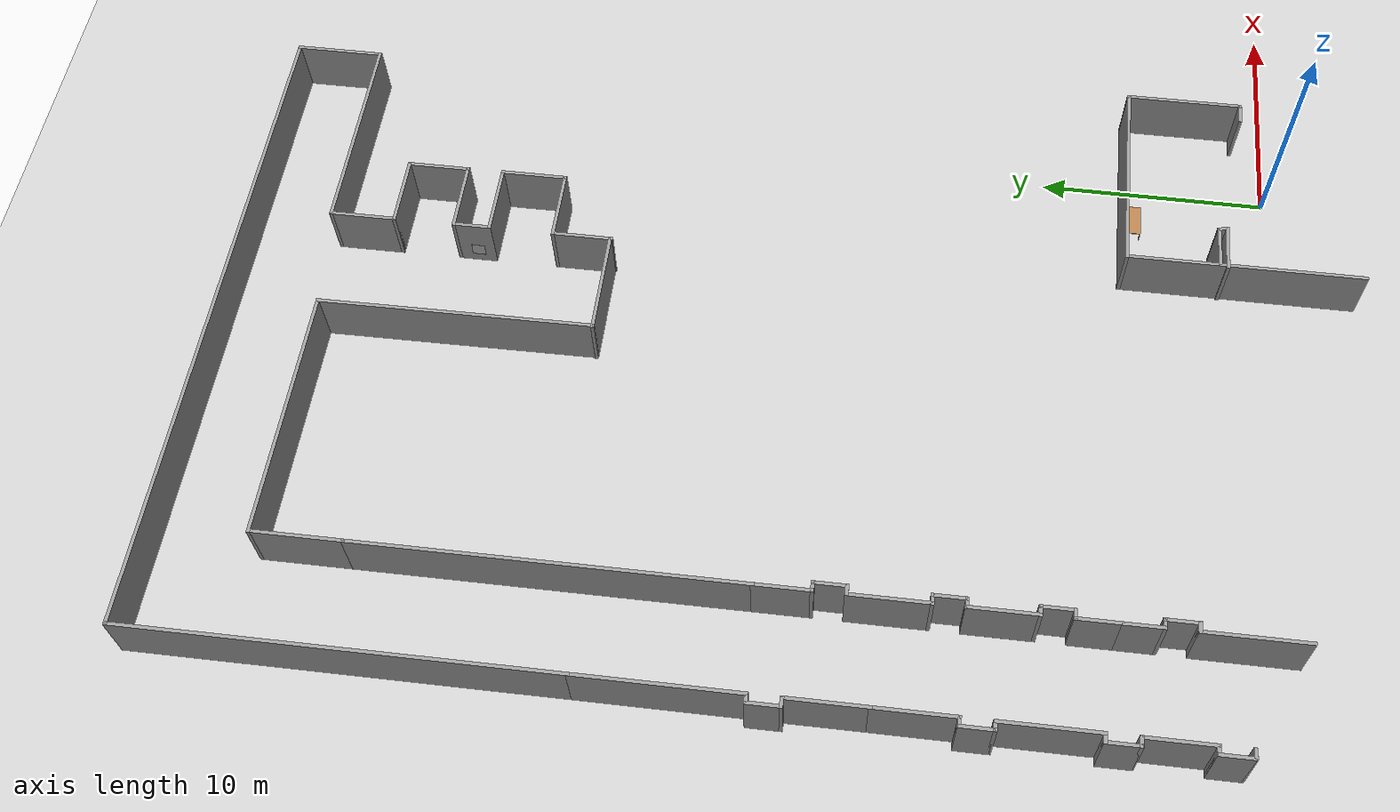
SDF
<sdf version="1.6">
 <world name="default">
  <model name="ground_plane">
   <static>1</static>
   <link name="link">
    <collision name="collision">
     <geometry><plane><normal>0 0 1</normal><size>1 1</size></plane></geometry>
     <surface><friction><ode><mu>100</mu><mu2>50</mu2></ode></friction></surface>
    </collision>
    <visual name="visual">
     <cast_shadows>0</cast_shadows>
     <geometry><plane><normal>0 0 1</normal><size>1 1</size></plane></geometry>
     <material>
      <script><uri>file://media/materials/scripts/gazebo.material</uri><name>Gazebo/Grey</name></script>
     </material>
    </visual>
   </link>
  </model>
  <model name="dstar_khu_5th_floor2">
   <pose>-12.2572 17.3934 0 0 -0 0</pose>
   <link name="Wall_108">
    <collision name="Wall_108_Collision">
     <geometry><box><size>4.5 0.15 2.5</size></box></geometry>
     <pose>0 0 1.25 0 -0 0</pose>
    </collision>
    <visual name="Wall_108_Visual">
     <pose>0 0 1.25 0 -0 0</pose>
     <geometry><box><size>4.5 0.15 2.5</size></box></geometry>
     <material>
      <script><uri>file://media/materials/scripts/gazebo.material</uri><name>Gazebo/Grey</name></script>
      <ambient>1 1 1 1</ambient>
     </material>
     <meta><layer>0</layer></meta>
    </visual>
    <pose>-10.4535 -16.0669 0 0 -0 1.5708</pose>
   </link>
   <link name="Wall_109">
    <collision name="Wall_109_Collision">
     <geometry><box><size>0.5 0.15 2.5</size></box></geometry>
     <pose>0 0 1.25 0 -0 0</pose>
    </collision>
    <visual name="Wall_109_Visual">
     <pose>0 0 1.25 0 -0 0</pose>
     <geometry><box><size>0.5 0.15 2.5</size></box></geometry>
     <material>
      <script><uri>file://media/materials/scripts/gazebo.material</uri><name>Gazebo/Grey</name></script>
      <ambient>1 1 1 1</ambient>
     </material>
     <meta><layer>0</layer></meta>
    </visual>
    <pose>-10.2785 -13.8919 0 0 -0 0</pose>
   </link>
   <link name="Wall_110">
    <collision name="Wall_110_Collision">
     <geometry><box><size>1.5 0.15 2.5</size></box></geometry>
     <pose>0 0 1.25 0 -0 0</pose>
    </collision>
    <visual name="Wall_110_Visual">
     <pose>0 0 1.25 0 -0 0</pose>
     <geometry><box><size>1.5 0.15 2.5</size></box></geometry>
     <material>
      <script><uri>file://media/materials/scripts/gazebo.material</uri><name>Gazebo/Grey</name></script>
      <ambient>1 1 1 1</ambient>
     </material>
     <meta><layer>0</layer></meta>
    </visual>
    <pose>-10.1035 -13.2169 0 0 -0 1.5708</pose>
   </link>
   <link name="Wall_111">
    <collision name="Wall_111_Collision">
     <geometry><box><size>0.5 0.15 2.5</size></box></geometry>
     <pose>0 0 1.25 0 -0 0</pose>
    </collision>
    <visual name="Wall_111_Visual">
     <pose>0 0 1.25 0 -0 0</pose>
     <geometry><box><size>0.5 0.15 2.5</size></box></geometry>
     <material>
      <script><uri>file://media/materials/scripts/gazebo.material</uri><name>Gazebo/Grey</name></script>
      <ambient>1 1 1 1</ambient>
     </material>
     <meta><layer>0</layer></meta>
    </visual>
    <pose>-10.2785 -12.5419 0 0 -0 3.14159</pose>
   </link>
   <link name="Wall_112">
    <collision name="Wall_112_Collision">
     <geometry><box><size>1.75 0.15 2.5</size></box></geometry>
     <pose>0 0 1.25 0 -0 0</pose>
    </collision>
    <visual name="Wall_112_Visual">
     <pose>0 0 1.25 0 -0 0</pose>
     <geometry><box><size>1.75 0.15 2.5</size></box></geometry>
     <material>
      <script><uri>file://media/materials/scripts/gazebo.material</uri><name>Gazebo/Grey</name></script>
      <ambient>1 1 1 1</ambient>
     </material>
     <meta><layer>0</layer></meta>
    </visual>
    <pose>-10.4535 -11.7419 0 0 -0 1.5708</pose>
   </link>
   <link name="Wall_114">
    <collision name="Wall_114_Collision">
     <geometry><box><size>2 0.15 2.5</size></box></geometry>
     <pose>0 0 1.25 0 -0 0</pose>
    </collision>
    <visual name="Wall_114_Visual">
     <pose>0 0 1.25 0 -0 0</pose>
     <geometry><box><size>2 0.15 2.5</size></box></geometry>
     <material>
      <script><uri>file://media/materials/scripts/gazebo.material</uri><name>Gazebo/Grey</name></script>
      <ambient>1 1 1 1</ambient>
     </material>
     <meta><layer>0</layer></meta>
    </visual>
    <pose>-10.4535 -10.0169 0 0 -0 1.5708</pose>
   </link>
   <link name="Wall_115">
    <collision name="Wall_115_Collision">
     <geometry><box><size>0.5 0.15 2.5</size></box></geometry>
     <pose>0 0 1.25 0 -0 0</pose>
    </collision>
    <visual name="Wall_115_Visual">
     <pose>0 0 1.25 0 -0 0</pose>
     <geometry><box><size>0.5 0.15 2.5</size></box></geometry>
     <material>
      <script><uri>file://media/materials/scripts/gazebo.material</uri><name>Gazebo/Grey</name></script>
      <ambient>1 1 1 1</ambient>
     </material>
     <meta><layer>0</layer></meta>
    </visual>
    <pose>-10.2785 -9.09191 0 0 -0 0</pose>
   </link>
   <link name="Wall_116">
    <collision name="Wall_116_Collision">
     <geometry><box><size>1.5 0.15 2.5</size></box></geometry>
     <pose>0 0 1.25 0 -0 0</pose>
    </collision>
    <visual name="Wall_116_Visual">
     <pose>0 0 1.25 0 -0 0</pose>
     <geometry><box><size>1.5 0.15 2.5</size></box></geometry>
     <material>
      <script><uri>file://media/materials/scripts/gazebo.material</uri><name>Gazebo/Grey</name></script>
      <ambient>1 1 1 1</ambient>
     </material>
     <meta><layer>0</layer></meta>
    </visual>
    <pose>-10.1035 -8.41691 0 0 -0 1.5708</pose>
   </link>
   <link name="Wall_117">
    <collision name="Wall_117_Collision">
     <geometry><box><size>0.5 0.15 2.5</size></box></geometry>
     <pose>0 0 1.25 0 -0 0</pose>
    </collision>
    <visual name="Wall_117_Visual">
     <pose>0 0 1.25 0 -0 0</pose>
     <geometry><box><size>0.5 0.15 2.5</size></box></geometry>
     <material>
      <script><uri>file://media/materials/scripts/gazebo.material</uri><name>Gazebo/Grey</name></script>
      <ambient>1 1 1 1</ambient>
     </material>
     <meta><layer>0</layer></meta>
    </visual>
    <pose>-10.2785 -7.74191 0 0 -0 3.14159</pose>
   </link>
   <link name="Wall_118">
    <collision name="Wall_118_Collision">
     <geometry><box><size>3 0.15 2.5</size></box></geometry>
     <pose>0 0 1.25 0 -0 0</pose>
    </collision>
    <visual name="Wall_118_Visual">
     <pose>0 0 1.25 0 -0 0</pose>
     <geometry><box><size>3 0.15 2.5</size></box></geometry>
     <material>
      <script><uri>file://media/materials/scripts/gazebo.material</uri><name>Gazebo/Grey</name></script>
      <ambient>1 1 1 1</ambient>
     </material>
     <meta><layer>0</layer></meta>
    </visual>
    <pose>-10.4535 -6.31691 0 0 -0 1.5708</pose>
   </link>
   <link name="Wall_12">
    <collision name="Wall_12_Collision">
     <geometry><box><size>1 0.15 2.5</size></box></geometry>
     <pose>0 0 1.25 0 -0 0</pose>
    </collision>
    <visual name="Wall_12_Visual">
     <pose>0 0 1.25 0 -0 0</pose>
     <geometry><box><size>1 0.15 2.5</size></box></geometry>
     <material>
      <script><uri>file://media/materials/scripts/gazebo.material</uri><name>Gazebo/Grey</name></script>
      <ambient>1 1 1 1</ambient>
     </material>
     <meta><layer>0</layer></meta>
    </visual>
    <pose>15.6651 -15.9996 0 0 -0 0</pose>
   </link>
   <link name="Wall_121">
    <collision name="Wall_121_Collision">
     <geometry><box><size>0.5 0.15 2.5</size></box></geometry>
     <pose>0 0 1.25 0 -0 0</pose>
    </collision>
    <visual name="Wall_121_Visual">
     <pose>0 0 1.25 0 -0 0</pose>
     <geometry><box><size>0.5 0.15 2.5</size></box></geometry>
     <material>
      <script><uri>file://media/materials/scripts/gazebo.material</uri><name>Gazebo/Grey</name></script>
      <ambient>1 1 1 1</ambient>
     </material>
     <meta><layer>0</layer></meta>
    </visual>
    <pose>-10.2785 -4.89191 0 0 -0 0</pose>
   </link>
   <link name="Wall_122">
    <collision name="Wall_122_Collision">
     <geometry><box><size>1.5 0.15 2.5</size></box></geometry>
     <pose>0 0 1.25 0 -0 0</pose>
    </collision>
    <visual name="Wall_122_Visual">
     <pose>0 0 1.25 0 -0 0</pose>
     <geometry><box><size>1.5 0.15 2.5</size></box></geometry>
     <material>
      <script><uri>file://media/materials/scripts/gazebo.material</uri><name>Gazebo/Grey</name></script>
      <ambient>1 1 1 1</ambient>
     </material>
     <meta><layer>0</layer></meta>
    </visual>
    <pose>-10.1035 -4.21691 0 0 -0 1.5708</pose>
   </link>
   <link name="Wall_123">
    <collision name="Wall_123_Collision">
     <geometry><box><size>0.5 0.15 2.5</size></box></geometry>
     <pose>0 0 1.25 0 -0 0</pose>
    </collision>
    <visual name="Wall_123_Visual">
     <pose>0 0 1.25 0 -0 0</pose>
     <geometry><box><size>0.5 0.15 2.5</size></box></geometry>
     <material>
      <script><uri>file://media/materials/scripts/gazebo.material</uri><name>Gazebo/Grey</name></script>
      <ambient>1 1 1 1</ambient>
     </material>
     <meta><layer>0</layer></meta>
    </visual>
    <pose>-10.2785 -3.54191 0 0 -0 3.14159</pose>
   </link>
   <link name="Wall_124">
    <collision name="Wall_124_Collision">
     <geometry><box><size>3.5 0.15 2.5</size></box></geometry>
     <pose>0 0 1.25 0 -0 0</pose>
    </collision>
    <visual name="Wall_124_Visual">
     <pose>0 0 1.25 0 -0 0</pose>
     <geometry><box><size>3.5 0.15 2.5</size></box></geometry>
     <material>
      <script><uri>file://media/materials/scripts/gazebo.material</uri><name>Gazebo/Grey</name></script>
      <ambient>1 1 1 1</ambient>
     </material>
     <meta><layer>0</layer></meta>
    </visual>
    <pose>-10.4535 -1.86691 0 0 -0 1.5708</pose>
   </link>
   <link name="Wall_127">
    <collision name="Wall_127_Collision">
     <geometry><box><size>0.5 0.15 2.5</size></box></geometry>
     <pose>0 0 1.25 0 -0 0</pose>
    </collision>
    <visual name="Wall_127_Visual">
     <pose>0 0 1.25 0 -0 0</pose>
     <geometry><box><size>0.5 0.15 2.5</size></box></geometry>
     <material>
      <script><uri>file://media/materials/scripts/gazebo.material</uri><name>Gazebo/Grey</name></script>
      <ambient>1 1 1 1</ambient>
     </material>
     <meta><layer>0</layer></meta>
    </visual>
    <pose>-10.2785 -0.191909 0 0 -0 0</pose>
   </link>
   <link name="Wall_128">
    <collision name="Wall_128_Collision">
     <geometry><box><size>1.5 0.15 2.5</size></box></geometry>
     <pose>0 0 1.25 0 -0 0</pose>
    </collision>
    <visual name="Wall_128_Visual">
     <pose>0 0 1.25 0 -0 0</pose>
     <geometry><box><size>1.5 0.15 2.5</size></box></geometry>
     <material>
      <script><uri>file://media/materials/scripts/gazebo.material</uri><name>Gazebo/Grey</name></script>
      <ambient>1 1 1 1</ambient>
     </material>
     <meta><layer>0</layer></meta>
    </visual>
    <pose>-10.1035 0.483091 0 0 -0 1.5708</pose>
   </link>
   <link name="Wall_129">
    <collision name="Wall_129_Collision">
     <geometry><box><size>0.5 0.15 2.5</size></box></geometry>
     <pose>0 0 1.25 0 -0 0</pose>
    </collision>
    <visual name="Wall_129_Visual">
     <pose>0 0 1.25 0 -0 0</pose>
     <geometry><box><size>0.5 0.15 2.5</size></box></geometry>
     <material>
      <script><uri>file://media/materials/scripts/gazebo.material</uri><name>Gazebo/Grey</name></script>
      <ambient>1 1 1 1</ambient>
     </material>
     <meta><layer>0</layer></meta>
    </visual>
    <pose>-10.2785 1.15809 0 0 -0 3.14159</pose>
   </link>
   <link name="Wall_13">
    <collision name="Wall_13_Collision">
     <geometry><box><size>5.25 0.15 2.5</size></box></geometry>
     <pose>0 0 1.25 0 -0 0</pose>
    </collision>
    <visual name="Wall_13_Visual">
     <pose>0 0 1.25 0 -0 0</pose>
     <geometry><box><size>5.25 0.15 2.5</size></box></geometry>
     <material>
      <script><uri>file://media/materials/scripts/gazebo.material</uri><name>Gazebo/Grey</name></script>
      <ambient>1 1 1 1</ambient>
     </material>
     <meta><layer>0</layer></meta>
    </visual>
    <pose>16.0901 -13.4496 0 0 -0 1.5708</pose>
   </link>
   <link name="Wall_130">
    <collision name="Wall_130_Collision">
     <geometry><box><size>2.5 0.15 2.5</size></box></geometry>
     <pose>0 0 1.25 0 -0 0</pose>
    </collision>
    <visual name="Wall_130_Visual">
     <pose>0 0 1.25 0 -0 0</pose>
     <geometry><box><size>2.5 0.15 2.5</size></box></geometry>
     <material>
      <script><uri>file://media/materials/scripts/gazebo.material</uri><name>Gazebo/Grey</name></script>
      <ambient>1 1 1 1</ambient>
     </material>
     <meta><layer>0</layer></meta>
    </visual>
    <pose>-10.4535 2.33309 0 0 -0 1.5708</pose>
   </link>
   <link name="Wall_134">
    <collision name="Wall_134_Collision">
     <geometry><box><size>0.5 0.15 2.5</size></box></geometry>
     <pose>0 0 1.25 0 -0 0</pose>
    </collision>
    <visual name="Wall_134_Visual">
     <pose>0 0 1.25 0 -0 0</pose>
     <geometry><box><size>0.5 0.15 2.5</size></box></geometry>
     <material>
      <script><uri>file://media/materials/scripts/gazebo.material</uri><name>Gazebo/Grey</name></script>
      <ambient>1 1 1 1</ambient>
     </material>
     <meta><layer>0</layer></meta>
    </visual>
    <pose>-15.1361 -15.875 0 0 -0 3.14159</pose>
   </link>
   <link name="Wall_135">
    <collision name="Wall_135_Collision">
     <geometry><box><size>1.5 0.15 2.5</size></box></geometry>
     <pose>0 0 1.25 0 -0 0</pose>
    </collision>
    <visual name="Wall_135_Visual">
     <pose>0 0 1.25 0 -0 0</pose>
     <geometry><box><size>1.5 0.15 2.5</size></box></geometry>
     <material>
      <script><uri>file://media/materials/scripts/gazebo.material</uri><name>Gazebo/Grey</name></script>
      <ambient>1 1 1 1</ambient>
     </material>
     <meta><layer>0</layer></meta>
    </visual>
    <pose>-15.3111 -15.2 0 0 -0 1.5708</pose>
   </link>
   <link name="Wall_136">
    <collision name="Wall_136_Collision">
     <geometry><box><size>0.5 0.15 2.5</size></box></geometry>
     <pose>0 0 1.25 0 -0 0</pose>
    </collision>
    <visual name="Wall_136_Visual">
     <pose>0 0 1.25 0 -0 0</pose>
     <geometry><box><size>0.5 0.15 2.5</size></box></geometry>
     <material>
      <script><uri>file://media/materials/scripts/gazebo.material</uri><name>Gazebo/Grey</name></script>
      <ambient>1 1 1 1</ambient>
     </material>
     <meta><layer>0</layer></meta>
    </visual>
    <pose>-15.1361 -14.525 0 0 -0 0</pose>
   </link>
   <link name="Wall_137">
    <collision name="Wall_137_Collision">
     <geometry><box><size>3 0.15 2.5</size></box></geometry>
     <pose>0 0 1.25 0 -0 0</pose>
    </collision>
    <visual name="Wall_137_Visual">
     <pose>0 0 1.25 0 -0 0</pose>
     <geometry><box><size>3 0.15 2.5</size></box></geometry>
     <material>
      <script><uri>file://media/materials/scripts/gazebo.material</uri><name>Gazebo/Grey</name></script>
      <ambient>1 1 1 1</ambient>
     </material>
     <meta><layer>0</layer></meta>
    </visual>
    <pose>-14.9611 -13.1 0 0 -0 1.5708</pose>
   </link>
   <link name="Wall_140">
    <collision name="Wall_140_Collision">
     <geometry><box><size>0.5 0.15 2.5</size></box></geometry>
     <pose>0 0 1.25 0 -0 0</pose>
    </collision>
    <visual name="Wall_140_Visual">
     <pose>0 0 1.25 0 -0 0</pose>
     <geometry><box><size>0.5 0.15 2.5</size></box></geometry>
     <material>
      <script><uri>file://media/materials/scripts/gazebo.material</uri><name>Gazebo/Grey</name></script>
      <ambient>1 1 1 1</ambient>
     </material>
     <meta><layer>0</layer></meta>
    </visual>
    <pose>-15.1361 -11.675 0 0 -0 3.14159</pose>
   </link>
   <link name="Wall_141">
    <collision name="Wall_141_Collision">
     <geometry><box><size>1.5 0.15 2.5</size></box></geometry>
     <pose>0 0 1.25 0 -0 0</pose>
    </collision>
    <visual name="Wall_141_Visual">
     <pose>0 0 1.25 0 -0 0</pose>
     <geometry><box><size>1.5 0.15 2.5</size></box></geometry>
     <material>
      <script><uri>file://media/materials/scripts/gazebo.material</uri><name>Gazebo/Grey</name></script>
      <ambient>1 1 1 1</ambient>
     </material>
     <meta><layer>0</layer></meta>
    </visual>
    <pose>-15.3111 -11 0 0 -0 1.5708</pose>
   </link>
   <link name="Wall_142">
    <collision name="Wall_142_Collision">
     <geometry><box><size>0.5 0.15 2.5</size></box></geometry>
     <pose>0 0 1.25 0 -0 0</pose>
    </collision>
    <visual name="Wall_142_Visual">
     <pose>0 0 1.25 0 -0 0</pose>
     <geometry><box><size>0.5 0.15 2.5</size></box></geometry>
     <material>
      <script><uri>file://media/materials/scripts/gazebo.material</uri><name>Gazebo/Grey</name></script>
      <ambient>1 1 1 1</ambient>
     </material>
     <meta><layer>0</layer></meta>
    </visual>
    <pose>-15.1361 -10.325 0 0 -0 0</pose>
   </link>
   <link name="Wall_143">
    <collision name="Wall_143_Collision">
     <geometry><box><size>4.25 0.15 2.5</size></box></geometry>
     <pose>0 0 1.25 0 -0 0</pose>
    </collision>
    <visual name="Wall_143_Visual">
     <pose>0 0 1.25 0 -0 0</pose>
     <geometry><box><size>4.25 0.15 2.5</size></box></geometry>
     <material>
      <script><uri>file://media/materials/scripts/gazebo.material</uri><name>Gazebo/Grey</name></script>
      <ambient>1 1 1 1</ambient>
     </material>
     <meta><layer>0</layer></meta>
    </visual>
    <pose>-14.9611 -8.275 0 0 -0 1.5708</pose>
   </link>
   <link name="Wall_145">
    <collision name="Wall_145_Collision">
     <geometry><box><size>0.5 0.15 2.5</size></box></geometry>
     <pose>0 0 1.25 0 -0 0</pose>
    </collision>
    <visual name="Wall_145_Visual">
     <pose>0 0 1.25 0 -0 0</pose>
     <geometry><box><size>0.5 0.15 2.5</size></box></geometry>
     <material>
      <script><uri>file://media/materials/scripts/gazebo.material</uri><name>Gazebo/Grey</name></script>
      <ambient>1 1 1 1</ambient>
     </material>
     <meta><layer>0</layer></meta>
    </visual>
    <pose>-15.1361 -6.225 0 0 -0 3.14159</pose>
   </link>
   <link name="Wall_146">
    <collision name="Wall_146_Collision">
     <geometry><box><size>1.5 0.15 2.5</size></box></geometry>
     <pose>0 0 1.25 0 -0 0</pose>
    </collision>
    <visual name="Wall_146_Visual">
     <pose>0 0 1.25 0 -0 0</pose>
     <geometry><box><size>1.5 0.15 2.5</size></box></geometry>
     <material>
      <script><uri>file://media/materials/scripts/gazebo.material</uri><name>Gazebo/Grey</name></script>
      <ambient>1 1 1 1</ambient>
     </material>
     <meta><layer>0</layer></meta>
    </visual>
    <pose>-15.3111 -5.55 0 0 -0 1.5708</pose>
   </link>
   <link name="Wall_147">
    <collision name="Wall_147_Collision">
     <geometry><box><size>0.5 0.15 2.5</size></box></geometry>
     <pose>0 0 1.25 0 -0 0</pose>
    </collision>
    <visual name="Wall_147_Visual">
     <pose>0 0 1.25 0 -0 0</pose>
     <geometry><box><size>0.5 0.15 2.5</size></box></geometry>
     <material>
      <script><uri>file://media/materials/scripts/gazebo.material</uri><name>Gazebo/Grey</name></script>
      <ambient>1 1 1 1</ambient>
     </material>
     <meta><layer>0</layer></meta>
    </visual>
    <pose>-15.1361 -4.875 0 0 -0 0</pose>
   </link>
   <link name="Wall_148">
    <collision name="Wall_148_Collision">
     <geometry><box><size>3.5 0.15 2.5</size></box></geometry>
     <pose>0 0 1.25 0 -0 0</pose>
    </collision>
    <visual name="Wall_148_Visual">
     <pose>0 0 1.25 0 -0 0</pose>
     <geometry><box><size>3.5 0.15 2.5</size></box></geometry>
     <material>
      <script><uri>file://media/materials/scripts/gazebo.material</uri><name>Gazebo/Grey</name></script>
      <ambient>1 1 1 1</ambient>
     </material>
     <meta><layer>0</layer></meta>
    </visual>
    <pose>-14.9611 -3.2 0 0 -0 1.5708</pose>
   </link>
   <link name="Wall_150">
    <collision name="Wall_150_Collision">
     <geometry><box><size>3.5 0.15 2.5</size></box></geometry>
     <pose>0 0 1.25 0 -0 0</pose>
    </collision>
    <visual name="Wall_150_Visual">
     <pose>0 0 1.25 0 -0 0</pose>
     <geometry><box><size>3.5 0.15 2.5</size></box></geometry>
     <material>
      <script><uri>file://media/materials/scripts/gazebo.material</uri><name>Gazebo/Grey</name></script>
      <ambient>1 1 1 1</ambient>
     </material>
     <meta><layer>0</layer></meta>
    </visual>
    <pose>-14.9611 0.149999 0 0 -0 1.5708</pose>
   </link>
   <link name="Wall_152">
    <collision name="Wall_152_Collision">
     <geometry><box><size>0.5 0.15 2.5</size></box></geometry>
     <pose>0 0 1.25 0 -0 0</pose>
    </collision>
    <visual name="Wall_152_Visual">
     <pose>0 0 1.25 0 -0 0</pose>
     <geometry><box><size>0.5 0.15 2.5</size></box></geometry>
     <material>
      <script><uri>file://media/materials/scripts/gazebo.material</uri><name>Gazebo/Grey</name></script>
      <ambient>1 1 1 1</ambient>
     </material>
     <meta><layer>0</layer></meta>
    </visual>
    <pose>-15.1361 1.825 0 0 -0 3.14159</pose>
   </link>
   <link name="Wall_153">
    <collision name="Wall_153_Collision">
     <geometry><box><size>1.5 0.15 2.5</size></box></geometry>
     <pose>0 0 1.25 0 -0 0</pose>
    </collision>
    <visual name="Wall_153_Visual">
     <pose>0 0 1.25 0 -0 0</pose>
     <geometry><box><size>1.5 0.15 2.5</size></box></geometry>
     <material>
      <script><uri>file://media/materials/scripts/gazebo.material</uri><name>Gazebo/Grey</name></script>
      <ambient>1 1 1 1</ambient>
     </material>
     <meta><layer>0</layer></meta>
    </visual>
    <pose>-15.3111 2.5 0 0 -0 1.5708</pose>
   </link>
   <link name="Wall_154">
    <collision name="Wall_154_Collision">
     <geometry><box><size>0.5 0.15 2.5</size></box></geometry>
     <pose>0 0 1.25 0 -0 0</pose>
    </collision>
    <visual name="Wall_154_Visual">
     <pose>0 0 1.25 0 -0 0</pose>
     <geometry><box><size>0.5 0.15 2.5</size></box></geometry>
     <material>
      <script><uri>file://media/materials/scripts/gazebo.material</uri><name>Gazebo/Grey</name></script>
      <ambient>1 1 1 1</ambient>
     </material>
     <meta><layer>0</layer></meta>
    </visual>
    <pose>-15.1361 3.175 0 0 -0 0</pose>
   </link>
   <link name="Wall_155">
    <collision name="Wall_155_Collision">
     <geometry><box><size>7 0.15 2.5</size></box></geometry>
     <pose>0 0 1.25 0 -0 0</pose>
    </collision>
    <visual name="Wall_155_Visual">
     <pose>0 0 1.25 0 -0 0</pose>
     <geometry><box><size>7 0.15 2.5</size></box></geometry>
     <material>
      <script><uri>file://media/materials/scripts/gazebo.material</uri><name>Gazebo/Grey</name></script>
      <ambient>1 1 1 1</ambient>
     </material>
     <meta><layer>0</layer></meta>
    </visual>
    <pose>-14.9611 6.6 0 0 -0 1.5708</pose>
   </link>
   <link name="Wall_157">
    <collision name="Wall_157_Collision">
     <geometry><box><size>16.5 0.15 2.5</size></box></geometry>
     <pose>0 0 1.25 0 -0 0</pose>
    </collision>
    <visual name="Wall_157_Visual">
     <pose>0 0 1.25 0 -0 0</pose>
     <geometry><box><size>16.5 0.15 2.5</size></box></geometry>
     <material>
      <script><uri>file://media/materials/scripts/gazebo.material</uri><name>Gazebo/Grey</name></script>
      <ambient>1 1 1 1</ambient>
     </material>
     <meta><layer>0</layer></meta>
    </visual>
    <pose>-10.4535 11.6831 0 0 -0 1.5708</pose>
   </link>
   <link name="Wall_159">
    <collision name="Wall_159_Collision">
     <geometry><box><size>18.25 0.15 2.5</size></box></geometry>
     <pose>0 0 1.25 0 -0 0</pose>
    </collision>
    <visual name="Wall_159_Visual">
     <pose>0 0 1.25 0 -0 0</pose>
     <geometry><box><size>18.25 0.15 2.5</size></box></geometry>
     <material>
      <script><uri>file://media/materials/scripts/gazebo.material</uri><name>Gazebo/Grey</name></script>
      <ambient>1 1 1 1</ambient>
     </material>
     <meta><layer>0</layer></meta>
    </visual>
    <pose>-14.9611 19.075 0 0 -0 1.5708</pose>
   </link>
   <link name="Wall_161">
    <collision name="Wall_161_Collision">
     <geometry><box><size>4 0.15 2.5</size></box></geometry>
     <pose>0 0 1.25 0 -0 0</pose>
    </collision>
    <visual name="Wall_161_Visual">
     <pose>0 0 1.25 0 -0 0</pose>
     <geometry><box><size>4 0.15 2.5</size></box></geometry>
     <material>
      <script><uri>file://media/materials/scripts/gazebo.material</uri><name>Gazebo/Grey</name></script>
      <ambient>1 1 1 1</ambient>
     </material>
     <meta><layer>0</layer></meta>
    </visual>
    <pose>-10.4535 21.7831 0 0 -0 1.5708</pose>
   </link>
   <link name="Wall_162">
    <collision name="Wall_162_Collision">
     <geometry><box><size>11.25 0.15 2.5</size></box></geometry>
     <pose>0 0 1.25 0 -0 0</pose>
    </collision>
    <visual name="Wall_162_Visual">
     <pose>0 0 1.25 0 -0 0</pose>
     <geometry><box><size>11.25 0.15 2.5</size></box></geometry>
     <material>
      <script><uri>file://media/materials/scripts/gazebo.material</uri><name>Gazebo/Grey</name></script>
      <ambient>1 1 1 1</ambient>
     </material>
     <meta><layer>0</layer></meta>
    </visual>
    <pose>-4.90352 23.7081 0 0 -0 0</pose>
   </link>
   <link name="Wall_163">
    <collision name="Wall_163_Collision">
     <geometry><box><size>12.1255 0.15 2.5</size></box></geometry>
     <pose>0 0 1.25 0 -0 0</pose>
    </collision>
    <visual name="Wall_163_Visual">
     <pose>0 0 1.25 0 -0 0</pose>
     <geometry><box><size>12.1255 0.15 2.5</size></box></geometry>
     <material>
      <script><uri>file://media/materials/scripts/gazebo.material</uri><name>Gazebo/Grey</name></script>
      <ambient>1 1 1 1</ambient>
     </material>
     <meta><layer>0</layer></meta>
    </visual>
    <pose>0.684281 17.7204 0 0 -0 -1.56448</pose>
   </link>
   <link name="Wall_164">
    <collision name="Wall_164_Collision">
     <geometry><box><size>4.75 0.15 2.5</size></box></geometry>
     <pose>0 0 1.25 0 -0 0</pose>
    </collision>
    <visual name="Wall_164_Visual">
     <pose>0 0 1.25 0 -0 0</pose>
     <geometry><box><size>4.75 0.15 2.5</size></box></geometry>
     <material>
      <script><uri>file://media/materials/scripts/gazebo.material</uri><name>Gazebo/Grey</name></script>
      <ambient>1 1 1 1</ambient>
     </material>
     <meta><layer>0</layer></meta>
    </visual>
    <pose>2.98428 11.7328 0 0 -0 0</pose>
   </link>
   <link name="Wall_166">
    <collision name="Wall_166_Collision">
     <geometry><box><size>29.75 0.15 2.5</size></box></geometry>
     <pose>0 0 1.25 0 -0 0</pose>
    </collision>
    <visual name="Wall_166_Visual">
     <pose>0 0 1.25 0 -0 0</pose>
     <geometry><box><size>29.75 0.15 2.5</size></box></geometry>
     <material>
      <script><uri>file://media/materials/scripts/gazebo.material</uri><name>Gazebo/Grey</name></script>
      <ambient>1 1 1 1</ambient>
     </material>
     <meta><layer>0</layer></meta>
    </visual>
    <pose>-0.161055 28.125 0 0 -0 0</pose>
   </link>
   <link name="Wall_168">
    <collision name="Wall_168_Collision">
     <geometry><box><size>4 0.15 2.5</size></box></geometry>
     <pose>0 0 1.25 0 -0 0</pose>
    </collision>
    <visual name="Wall_168_Visual">
     <pose>0 0 1.25 0 -0 0</pose>
     <geometry><box><size>4 0.15 2.5</size></box></geometry>
     <material>
      <script><uri>file://media/materials/scripts/gazebo.material</uri><name>Gazebo/Grey</name></script>
      <ambient>1 1 1 1</ambient>
     </material>
     <meta><layer>0</layer></meta>
    </visual>
    <pose>14.6389 26.2 0 0 -0 -1.5708</pose>
   </link>
   <link name="Wall_169">
    <collision name="Wall_169_Collision">
     <geometry><box><size>9.5 0.15 2.5</size></box></geometry>
     <pose>0 0 1.25 0 -0 0</pose>
    </collision>
    <visual name="Wall_169_Visual">
     <pose>0 0 1.25 0 -0 0</pose>
     <geometry><box><size>9.5 0.15 2.5</size></box></geometry>
     <material>
      <script><uri>file://media/materials/scripts/gazebo.material</uri><name>Gazebo/Grey</name></script>
      <ambient>1 1 1 1</ambient>
     </material>
     <meta><layer>0</layer></meta>
    </visual>
    <pose>9.96395 24.275 0 0 -0 3.14159</pose>
   </link>
   <link name="Wall_170">
    <collision name="Wall_170_Collision">
     <geometry><box><size>3 0.15 2.5</size></box></geometry>
     <pose>0 0 1.25 0 -0 0</pose>
    </collision>
    <visual name="Wall_170_Visual">
     <pose>0 0 1.25 0 -0 0</pose>
     <geometry><box><size>3 0.15 2.5</size></box></geometry>
     <material>
      <script><uri>file://media/materials/scripts/gazebo.material</uri><name>Gazebo/Grey</name></script>
      <ambient>1 1 1 1</ambient>
     </material>
     <meta><layer>0</layer></meta>
    </visual>
    <pose>5.28895 22.85 0 0 -0 -1.5708</pose>
   </link>
   <link name="Wall_171">
    <collision name="Wall_171_Collision">
     <geometry><box><size>3.25 0.15 2.5</size></box></geometry>
     <pose>0 0 1.25 0 -0 0</pose>
    </collision>
    <visual name="Wall_171_Visual">
     <pose>0 0 1.25 0 -0 0</pose>
     <geometry><box><size>3.25 0.15 2.5</size></box></geometry>
     <material>
      <script><uri>file://media/materials/scripts/gazebo.material</uri><name>Gazebo/Grey</name></script>
      <ambient>1 1 1 1</ambient>
     </material>
     <meta><layer>0</layer></meta>
    </visual>
    <pose>6.83894 21.425 0 0 -0 0</pose>
   </link>
   <link name="Wall_172">
    <collision name="Wall_172_Collision">
     <geometry><box><size>2.83014 0.15 2.5</size></box></geometry>
     <pose>0 0 1.25 0 -0 0</pose>
    </collision>
    <visual name="Wall_172_Visual">
     <pose>0 0 1.25 0 -0 0</pose>
     <geometry><box><size>2.83014 0.15 2.5</size></box></geometry>
     <material>
      <script><uri>file://media/materials/scripts/gazebo.material</uri><name>Gazebo/Grey</name></script>
      <ambient>1 1 1 1</ambient>
     </material>
     <meta><layer>0</layer></meta>
    </visual>
    <pose>8.38894 20.085 0 0 -0 -1.5708</pose>
   </link>
   <link name="Wall_173">
    <collision name="Wall_173_Collision">
     <geometry><box><size>3.25 0.15 2.5</size></box></geometry>
     <pose>0 0 1.25 0 -0 0</pose>
    </collision>
    <visual name="Wall_173_Visual">
     <pose>0 0 1.25 0 -0 0</pose>
     <geometry><box><size>3.25 0.15 2.5</size></box></geometry>
     <material>
      <script><uri>file://media/materials/scripts/gazebo.material</uri><name>Gazebo/Grey</name></script>
      <ambient>1 1 1 1</ambient>
     </material>
     <meta><layer>0</layer></meta>
    </visual>
    <pose>6.86056 18.7449 0 0 -0 3.14159</pose>
   </link>
   <link name="Wall_175">
    <collision name="Wall_175_Collision">
     <geometry><box><size>1.75 0.15 2.5</size></box></geometry>
     <pose>0 0 1.25 0 -0 0</pose>
    </collision>
    <visual name="Wall_175_Visual">
     <pose>0 0 1.25 0 -0 0</pose>
     <geometry><box><size>1.75 0.15 2.5</size></box></geometry>
     <material>
      <script><uri>file://media/materials/scripts/gazebo.material</uri><name>Gazebo/Grey</name></script>
      <ambient>1 1 1 1</ambient>
     </material>
     <meta><layer>0</layer></meta>
    </visual>
    <pose>5.31056 17.9449 0 0 -0 -1.5708</pose>
   </link>
   <link name="Wall_176">
    <collision name="Wall_176_Collision">
     <geometry><box><size>3.25 0.15 2.5</size></box></geometry>
     <pose>0 0 1.25 0 -0 0</pose>
    </collision>
    <visual name="Wall_176_Visual">
     <pose>0 0 1.25 0 -0 0</pose>
     <geometry><box><size>3.25 0.15 2.5</size></box></geometry>
     <material>
      <script><uri>file://media/materials/scripts/gazebo.material</uri><name>Gazebo/Grey</name></script>
      <ambient>1 1 1 1</ambient>
     </material>
     <meta><layer>0</layer></meta>
    </visual>
    <pose>6.86056 17.1449 0 0 -0 0</pose>
   </link>
   <link name="Wall_177">
    <collision name="Wall_177_Collision">
     <geometry><box><size>3 0.15 2.5</size></box></geometry>
     <pose>0 0 1.25 0 -0 0</pose>
    </collision>
    <visual name="Wall_177_Visual">
     <pose>0 0 1.25 0 -0 0</pose>
     <geometry><box><size>3 0.15 2.5</size></box></geometry>
     <material>
      <script><uri>file://media/materials/scripts/gazebo.material</uri><name>Gazebo/Grey</name></script>
      <ambient>1 1 1 1</ambient>
     </material>
     <meta><layer>0</layer></meta>
    </visual>
    <pose>8.41056 15.7199 0 0 -0 -1.5708</pose>
   </link>
   <link name="Wall_178">
    <collision name="Wall_178_Collision">
     <geometry><box><size>3.25 0.15 2.5</size></box></geometry>
     <pose>0 0 1.25 0 -0 0</pose>
    </collision>
    <visual name="Wall_178_Visual">
     <pose>0 0 1.25 0 -0 0</pose>
     <geometry><box><size>3.25 0.15 2.5</size></box></geometry>
     <material>
      <script><uri>file://media/materials/scripts/gazebo.material</uri><name>Gazebo/Grey</name></script>
      <ambient>1 1 1 1</ambient>
     </material>
     <meta><layer>0</layer></meta>
    </visual>
    <pose>6.86056 14.2949 0 0 -0 3.14159</pose>
   </link>
   <link name="Wall_179">
    <collision name="Wall_179_Collision">
     <geometry><box><size>2.75 0.15 2.5</size></box></geometry>
     <pose>0 0 1.25 0 -0 0</pose>
    </collision>
    <visual name="Wall_179_Visual">
     <pose>0 0 1.25 0 -0 0</pose>
     <geometry><box><size>2.75 0.15 2.5</size></box></geometry>
     <material>
      <script><uri>file://media/materials/scripts/gazebo.material</uri><name>Gazebo/Grey</name></script>
      <ambient>1 1 1 1</ambient>
     </material>
     <meta><layer>0</layer></meta>
    </visual>
    <pose>5.31056 12.9949 0 0 -0 -1.5708</pose>
   </link>
   <link name="Wall_20">
    <collision name="Wall_20_Collision">
     <geometry><box><size>9.25 0.15 2.5</size></box></geometry>
     <pose>0 0 1.25 0 -0 0</pose>
    </collision>
    <visual name="Wall_20_Visual">
     <pose>0 0 1.25 0 -0 0</pose>
     <geometry><box><size>9.25 0.15 2.5</size></box></geometry>
     <material>
      <script><uri>file://media/materials/scripts/gazebo.material</uri><name>Gazebo/Grey</name></script>
      <ambient>1 1 1 1</ambient>
     </material>
     <meta><layer>0</layer></meta>
    </visual>
    <pose>11.5401 -10.8996 0 0 -0 3.14159</pose>
   </link>
   <link name="Wall_21">
    <collision name="Wall_21_Collision">
     <geometry><box><size>10.5 0.15 2.5</size></box></geometry>
     <pose>0 0 1.25 0 -0 0</pose>
    </collision>
    <visual name="Wall_21_Visual">
     <pose>0 0 1.25 0 -0 0</pose>
     <geometry><box><size>10.5 0.15 2.5</size></box></geometry>
     <material>
      <script><uri>file://media/materials/scripts/gazebo.material</uri><name>Gazebo/Grey</name></script>
      <ambient>1 1 1 1</ambient>
     </material>
     <meta><layer>0</layer></meta>
    </visual>
    <pose>6.99012 -16.0746 0 0 -0 -1.5708</pose>
   </link>
   <link name="Wall_56">
    <collision name="Wall_56_Collision">
     <geometry><box><size>2 0.15 2.5</size></box></geometry>
     <pose>0 0 1.25 0 -0 0</pose>
    </collision>
    <visual name="Wall_56_Visual">
     <pose>0 0 1.25 0 -0 0</pose>
     <geometry><box><size>2 0.15 2.5</size></box></geometry>
     <material>
      <script><uri>file://media/materials/scripts/gazebo.material</uri><name>Gazebo/Grey</name></script>
      <ambient>1 1 1 1</ambient>
     </material>
     <meta><layer>0</layer></meta>
    </visual>
    <pose>7.98113 -14.9523 0 0 -0 0</pose>
   </link>
   <link name="Wall_57">
    <collision name="Wall_57_Collision">
     <geometry><box><size>0.5 0.15 2.5</size></box></geometry>
     <pose>0 0 1.25 0 -0 0</pose>
    </collision>
    <visual name="Wall_57_Visual">
     <pose>0 0 1.25 0 -0 0</pose>
     <geometry><box><size>0.5 0.15 2.5</size></box></geometry>
     <material>
      <script><uri>file://media/materials/scripts/gazebo.material</uri><name>Gazebo/Grey</name></script>
      <ambient>1 1 1 1</ambient>
     </material>
     <meta><layer>0</layer></meta>
    </visual>
    <pose>8.95142 -15.1214 0 0 -0 -1.309</pose>
   </link>
   <link name="Wall_58">
    <collision name="Wall_58_Collision">
     <geometry><box><size>2.25 0.15 2.5</size></box></geometry>
     <pose>0 0 1.25 0 -0 0</pose>
    </collision>
    <visual name="Wall_58_Visual">
     <pose>0 0 1.25 0 -0 0</pose>
     <geometry><box><size>2.25 0.15 2.5</size></box></geometry>
     <material>
      <script><uri>file://media/materials/scripts/gazebo.material</uri><name>Gazebo/Grey</name></script>
      <ambient>1 1 1 1</ambient>
     </material>
     <meta><layer>0</layer></meta>
    </visual>
    <pose>7.94671 -15.2904 0 0 -0 3.14159</pose>
   </link>
   <static>1</static>
  </model>
  <model name="table">
   <static>1</static>
   <link name="link">
    <collision name="surface">
     <pose>0 0 1 0 -0 0</pose>
     <geometry><box><size>1.5 0.8 0.03</size></box></geometry>
     <surface><friction><ode><mu>0.6</mu><mu2>0.6</mu2></ode></friction></surface>
    </collision>
    <visual name="visual1">
     <pose>0 0 1 0 -0 0</pose>
     <geometry><box><size>1.5 0.8 0.03</size></box></geometry>
     <material>
      <script><uri>file://media/materials/scripts/gazebo.material</uri><name>Gazebo/Wood</name></script>
     </material>
    </visual>
    <collision name="front_left_leg">
     <pose>0.68 0.38 0.5 0 -0 0</pose>
     <geometry><cylinder><radius>0.02</radius><length>1</length></cylinder></geometry>
    </collision>
    <visual name="front_left_leg">
     <pose>0.68 0.38 0.5 0 -0 0</pose>
     <geometry><cylinder><radius>0.02</radius><length>1</length></cylinder></geometry>
     <material>
      <script><uri>file://media/materials/scripts/gazebo.material</uri><name>Gazebo/Grey</name></script>
     </material>
    </visual>
    <collision name="front_right_leg">
     <pose>0.68 -0.38 0.5 0 -0 0</pose>
     <geometry><cylinder><radius>0.02</radius><length>1</length></cylinder></geometry>
    </collision>
    <visual name="front_right_leg">
     <pose>0.68 -0.38 0.5 0 -0 0</pose>
     <geometry><cylinder><radius>0.02</radius><length>1</length></cylinder></geometry>
     <material>
      <script><uri>file://media/materials/scripts/gazebo.material</uri><name>Gazebo/Grey</name></script>
     </material>
    </visual>
    <collision name="back_right_leg">
     <pose>-0.68 -0.38 0.5 0 -0 0</pose>
     <geometry><cylinder><radius>0.02</radius><length>1</length></cylinder></geometry>
    </collision>
    <visual name="back_right_leg">
     <pose>-0.68 -0.38 0.5 0 -0 0</pose>
     <geometry><cylinder><radius>0.02</radius><length>1</length></cylinder></geometry>
     <material>
      <script><uri>file://media/materials/scripts/gazebo.material</uri><name>Gazebo/Grey</name></script>
     </material>
    </visual>
    <collision name="back_left_leg">
     <pose>-0.68 0.38 0.5 0 -0 0</pose>
     <geometry><cylinder><radius>0.02</radius><length>1</length></cylinder></geometry>
    </collision>
    <visual name="back_left_leg">
     <pose>-0.68 0.38 0.5 0 -0 0</pose>
     <geometry><cylinder><radius>0.02</radius><length>1</length></cylinder></geometry>
     <material>
      <script><uri>file://media/materials/scripts/gazebo.material</uri><name>Gazebo/Grey</name></script>
     </material>
    </visual>
   </link>
   <pose>-1.80562 5.98402 -0.484276 0 -0 0</pose>
  </model>
  <model name="my_ground_plane">
   <static>1</static>
   <link name="link">
    <collision name="collision">
     <geometry><plane><normal>0 0 1</normal><size>0.6 0.6</size></plane></geometry>
     <surface><friction><ode><mu>100</mu><mu2>50</mu2></ode></friction></surface>
    </collision>
    <visual name="visual">
     <cast_shadows>0</cast_shadows>
     <geometry><plane><normal>0 0 1</normal><size>0.6 0.6</size></plane></geometry>
    </visual>
   </link>
   <pose>-7.1 35.197 0.9 1.5 -1e-06 -1.6</pose>
  </model>
 </world>
</sdf>
